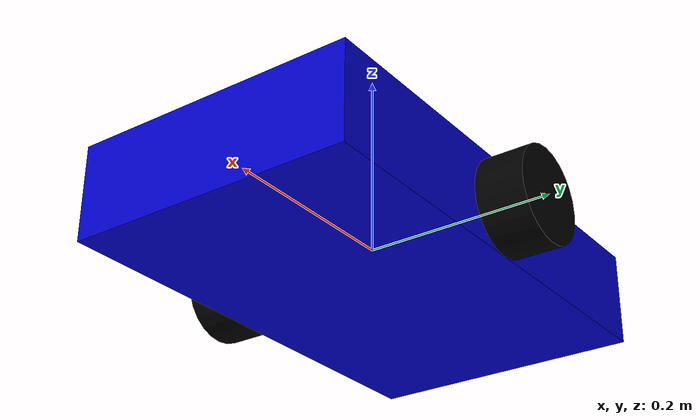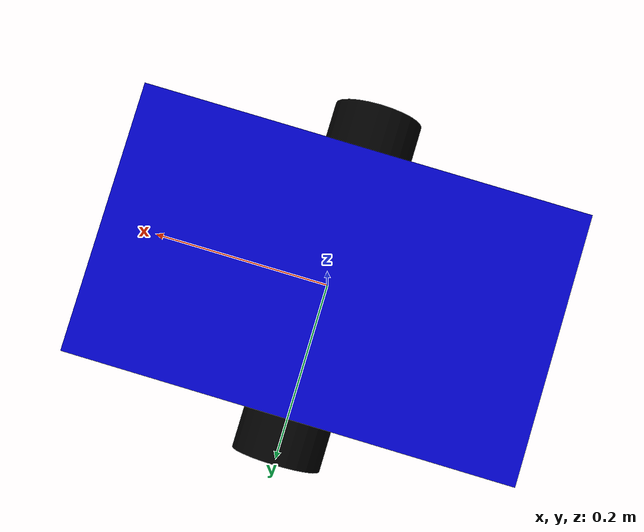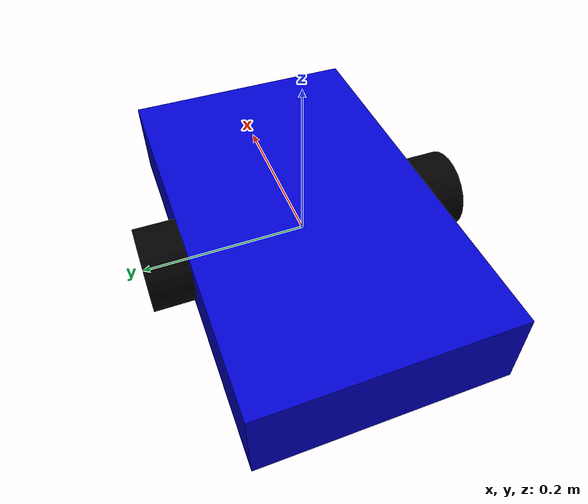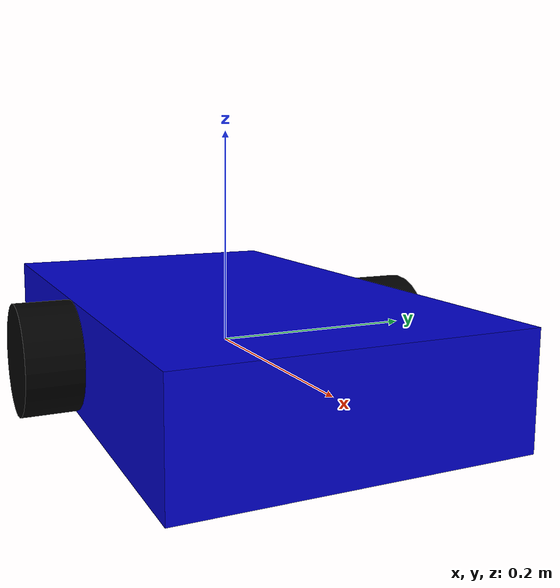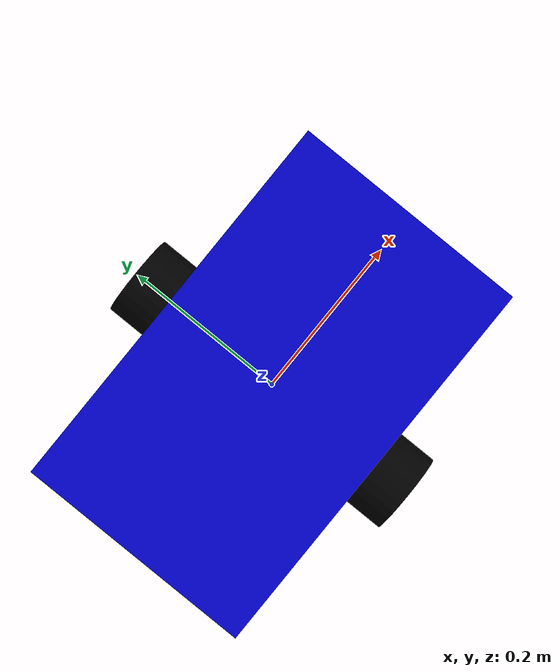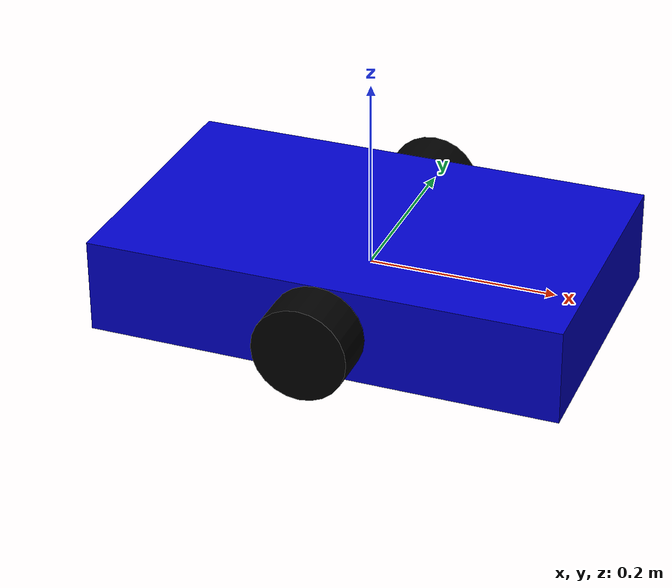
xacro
<?xml version="1.0"?>
<robot xmlns:xacro="http://www.ros.org/wiki/xacro" name="simple_amr">

  <!-- Base Link -->
  <link name="base_link">
    <visual>
      <geometry>
        <box size="0.5 0.3 0.1"/>
      </geometry>
      <material name="blue">
        <color rgba="0 0 0.8 1"/>
      </material>
    </visual>
    <collision>
      <geometry>
        <box size="0.5 0.3 0.1"/>
      </geometry>
    </collision>
    <inertial>
      <mass value="5.0"/>
      <inertia ixx="0.1" ixy="0.0" ixz="0.0" iyy="0.1" iyz="0.0" izz="0.1"/>
    </inertial>
  </link>

  <!-- Left Wheel -->
  <link name="left_wheel">
    <visual>
      <geometry>
        <cylinder length="0.05" radius="0.05"/>
      </geometry>
      <material name="black">
        <color rgba="0 0 0 1"/>
      </material>
    </visual>
    <collision>
      <geometry>
        <cylinder length="0.05" radius="0.05"/>
      </geometry>
    </collision>
    <inertial>
      <mass value="1.0"/>
      <inertia ixx="0.01" ixy="0.0" ixz="0.0" iyy="0.01" iyz="0.0" izz="0.01"/>
    </inertial>
  </link>

  <joint name="left_wheel_joint" type="continuous">
    <parent link="base_link"/>
    <child link="left_wheel"/>
    <origin xyz="0 0.175 0" rpy="-1.5707 0 0"/>
    <axis xyz="0 0 1"/>
  </joint>

  <!-- Right Wheel -->
  <link name="right_wheel">
    <visual>
      <geometry>
        <cylinder length="0.05" radius="0.05"/>
      </geometry>
      <material name="black">
        <color rgba="0 0 0 1"/>
      </material>
    </visual>
    <collision>
      <geometry>
        <cylinder length="0.05" radius="0.05"/>
      </geometry>
    </collision>
    <inertial>
      <mass value="1.0"/>
      <inertia ixx="0.01" ixy="0.0" ixz="0.0" iyy="0.01" iyz="0.0" izz="0.01"/>
    </inertial>
  </link>

  <joint name="right_wheel_joint" type="continuous">
    <parent link="base_link"/>
    <child link="right_wheel"/>
    <origin xyz="0 -0.175 0" rpy="-1.5707 0 0"/>
    <axis xyz="0 0 1"/>
  </joint>

  <!-- Gazebo Plugin -->
  <gazebo>
    <plugin name="diff_drive" filename="libgazebo_ros_diff_drive.so">
      <left_joint>left_wheel_joint</left_joint>
      <right_joint>right_wheel_joint</right_joint>
      <wheel_separation>0.35</wheel_separation>
      <wheel_diameter>0.1</wheel_diameter>
      <max_wheel_torque>10</max_wheel_torque>
      <max_wheel_acceleration>1.0</max_wheel_acceleration>
      <publish_odom>true</publish_odom>
      <publish_odom_tf>true</publish_odom_tf>
      <publish_wheel_tf>true</publish_wheel_tf>
      <odometry_frame>odom</odometry_frame>
      <robot_base_frame>base_link</robot_base_frame>
    </plugin>
  </gazebo>

</robot>
